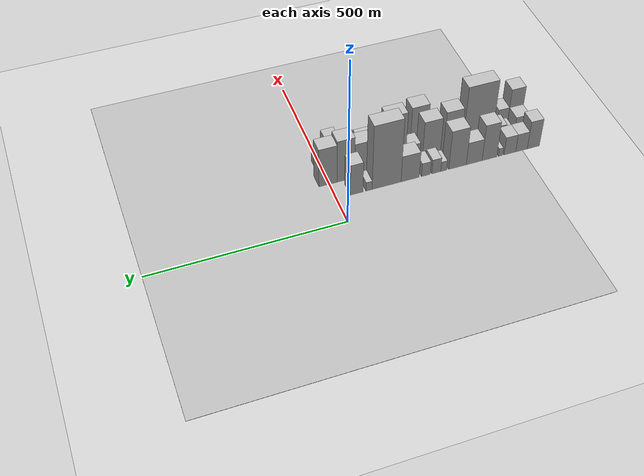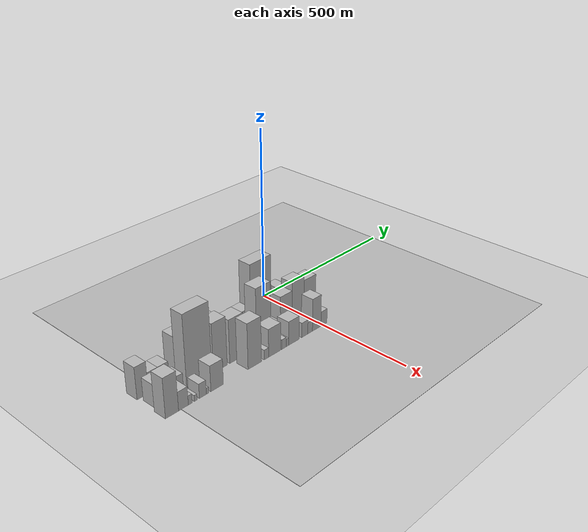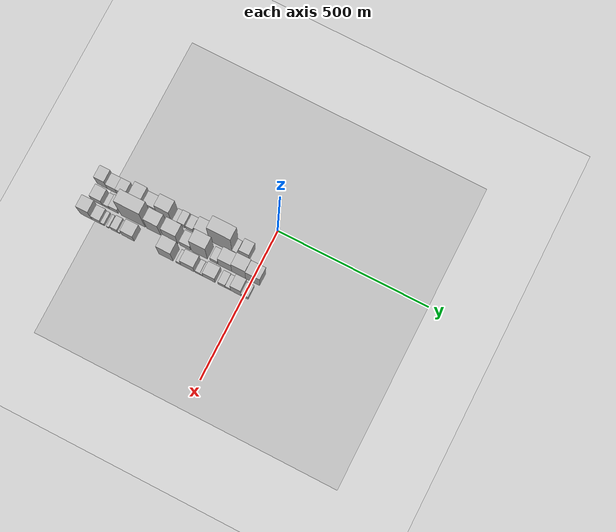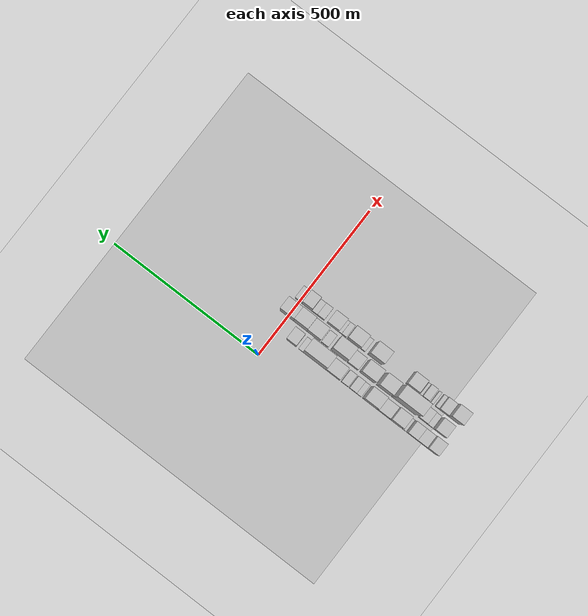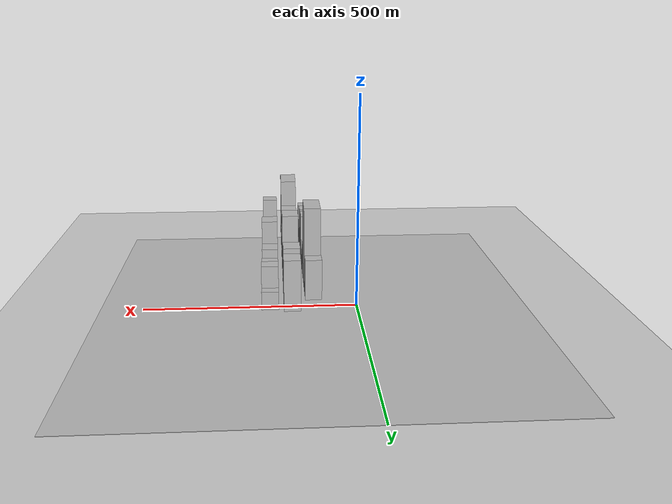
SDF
<sdf version="1.6">
 <world name="default">
  <include><name>ground_plane_1</name><uri>model://HANNAS_ground_plane</uri></include>
  <include>
   <name>ground_plane_2</name>
   <uri>model://HANNAS_ground_plane</uri>
   <pose>100 0 0  0 0 0</pose>
  </include>
  <model name="building_1">
   <static>1</static>
   <pose>100.0000 -530.8373 0 0.000000 0.000000 0.000000</pose>
   <link name="link">
    <pose>0 0 46.50 0 0 0</pose>
    <collision name="collision"><geometry><box><size>40.0000 34.3255 93.0000</size></box></geometry></collision>
    <visual name="visual">
     <cast_shadows>0</cast_shadows>
     <geometry><box><size>40.0000 34.3255 93.0000</size></box></geometry>
     <material>
      <script>
       <uri>model://HANNAS_wall/materials/scripts</uri>
       <uri>model://HANNAS_wall/materials/textures</uri>
       <name>vrc/HANNAS_wall</name>
      </script>
     </material>
    </visual>
   </link>
  </model>
  <model name="building_2">
   <static>1</static>
   <pose>100.0000 -497.5036 0 0.000000 0.000000 0.000000</pose>
   <link name="link">
    <pose>0 0 30.00 0 0 0</pose>
    <collision name="collision"><geometry><box><size>40.0000 32.3418 60.0000</size></box></geometry></collision>
    <visual name="visual">
     <cast_shadows>0</cast_shadows>
     <geometry><box><size>40.0000 32.3418 60.0000</size></box></geometry>
     <material>
      <script>
       <uri>model://HANNAS_wall/materials/scripts</uri>
       <uri>model://HANNAS_wall/materials/textures</uri>
       <name>vrc/HANNAS_wall</name>
      </script>
     </material>
    </visual>
   </link>
  </model>
  <model name="building_3">
   <static>1</static>
   <pose>100.0000 -465.0349 0 0.000000 0.000000 0.000000</pose>
   <link name="link">
    <pose>0 0 30.00 0 0 0</pose>
    <collision name="collision"><geometry><box><size>40.0000 32.5957 60.0000</size></box></geometry></collision>
    <visual name="visual">
     <cast_shadows>0</cast_shadows>
     <geometry><box><size>40.0000 32.5957 60.0000</size></box></geometry>
     <material>
      <script>
       <uri>model://HANNAS_wall/materials/scripts</uri>
       <uri>model://HANNAS_wall/materials/textures</uri>
       <name>vrc/HANNAS_wall</name>
      </script>
     </material>
    </visual>
   </link>
  </model>
  <model name="building_4">
   <static>1</static>
   <pose>100.0000 -439.0278 0 0.000000 0.000000 0.000000</pose>
   <link name="link">
    <pose>0 0 13.50 0 0 0</pose>
    <collision name="collision"><geometry><box><size>40.0000 11.4185 27.0000</size></box></geometry></collision>
    <visual name="visual">
     <cast_shadows>0</cast_shadows>
     <geometry><box><size>40.0000 11.4185 27.0000</size></box></geometry>
     <material>
      <script>
       <uri>model://HANNAS_wall/materials/scripts</uri>
       <uri>model://HANNAS_wall/materials/textures</uri>
       <name>vrc/HANNAS_wall</name>
      </script>
     </material>
    </visual>
   </link>
  </model>
  <model name="building_5">
   <static>1</static>
   <pose>100.0000 -407.9759 0 0.000000 0.000000 0.000000</pose>
   <link name="link">
    <pose>0 0 60.00 0 0 0</pose>
    <collision name="collision"><geometry><box><size>40.0000 40.6853 120.0000</size></box></geometry></collision>
    <visual name="visual">
     <cast_shadows>0</cast_shadows>
     <geometry><box><size>40.0000 40.6853 120.0000</size></box></geometry>
     <material>
      <script>
       <uri>model://HANNAS_wall/materials/scripts</uri>
       <uri>model://HANNAS_wall/materials/textures</uri>
       <name>vrc/HANNAS_wall</name>
      </script>
     </material>
    </visual>
   </link>
  </model>
  <model name="building_6">
   <static>1</static>
   <pose>100.0000 -366.1311 0 0.000000 0.000000 0.000000</pose>
   <link name="link">
    <pose>0 0 37.50 0 0 0</pose>
    <collision name="collision"><geometry><box><size>40.0000 43.0041 75.0000</size></box></geometry></collision>
    <visual name="visual">
     <cast_shadows>0</cast_shadows>
     <geometry><box><size>40.0000 43.0041 75.0000</size></box></geometry>
     <material>
      <script>
       <uri>model://HANNAS_wall/materials/scripts</uri>
       <uri>model://HANNAS_wall/materials/textures</uri>
       <name>vrc/HANNAS_wall</name>
      </script>
     </material>
    </visual>
   </link>
  </model>
  <model name="building_7">
   <static>1</static>
   <pose>100.0000 -320.7055 0 0.000000 0.000000 0.000000</pose>
   <link name="link">
    <pose>0 0 64.50 0 0 0</pose>
    <collision name="collision"><geometry><box><size>40.0000 47.8472 129.0000</size></box></geometry></collision>
    <visual name="visual">
     <cast_shadows>0</cast_shadows>
     <geometry><box><size>40.0000 47.8472 129.0000</size></box></geometry>
     <material>
      <script>
       <uri>model://HANNAS_wall/materials/scripts</uri>
       <uri>model://HANNAS_wall/materials/textures</uri>
       <name>vrc/HANNAS_wall</name>
      </script>
     </material>
    </visual>
   </link>
  </model>
  <model name="building_8">
   <static>1</static>
   <pose>100.0000 -283.4614 0 0.000000 0.000000 0.000000</pose>
   <link name="link">
    <pose>0 0 16.50 0 0 0</pose>
    <collision name="collision"><geometry><box><size>40.0000 16.6410 33.0000</size></box></geometry></collision>
    <visual name="visual">
     <cast_shadows>0</cast_shadows>
     <geometry><box><size>40.0000 16.6410 33.0000</size></box></geometry>
     <material>
      <script>
       <uri>model://HANNAS_wall/materials/scripts</uri>
       <uri>model://HANNAS_wall/materials/textures</uri>
       <name>vrc/HANNAS_wall</name>
      </script>
     </material>
    </visual>
   </link>
  </model>
  <model name="building_9">
   <static>1</static>
   <pose>100.0000 -263.0421 0 0.000000 0.000000 0.000000</pose>
   <link name="link">
    <pose>0 0 24.00 0 0 0</pose>
    <collision name="collision"><geometry><box><size>40.0000 24.1975 48.0000</size></box></geometry></collision>
    <visual name="visual">
     <cast_shadows>0</cast_shadows>
     <geometry><box><size>40.0000 24.1975 48.0000</size></box></geometry>
     <material>
      <script>
       <uri>model://HANNAS_wall/materials/scripts</uri>
       <uri>model://HANNAS_wall/materials/textures</uri>
       <name>vrc/HANNAS_wall</name>
      </script>
     </material>
    </visual>
   </link>
  </model>
  <model name="building_10">
   <static>1</static>
   <pose>100.0000 -235.0637 0 0.000000 0.000000 0.000000</pose>
   <link name="link">
    <pose>0 0 22.50 0 0 0</pose>
    <collision name="collision"><geometry><box><size>40.0000 23.7592 45.0000</size></box></geometry></collision>
    <visual name="visual">
     <cast_shadows>0</cast_shadows>
     <geometry><box><size>40.0000 23.7592 45.0000</size></box></geometry>
     <material>
      <script>
       <uri>model://HANNAS_wall/materials/scripts</uri>
       <uri>model://HANNAS_wall/materials/textures</uri>
       <name>vrc/HANNAS_wall</name>
      </script>
     </material>
    </visual>
   </link>
  </model>
  <model name="building_11">
   <static>1</static>
   <pose>100.0000 -192.9801 0 0.000000 0.000000 0.000000</pose>
   <link name="link">
    <pose>0 0 43.50 0 0 0</pose>
    <collision name="collision"><geometry><box><size>40.0000 48.4080 87.0000</size></box></geometry></collision>
    <visual name="visual">
     <cast_shadows>0</cast_shadows>
     <geometry><box><size>40.0000 48.4080 87.0000</size></box></geometry>
     <material>
      <script>
       <uri>model://HANNAS_wall/materials/scripts</uri>
       <uri>model://HANNAS_wall/materials/textures</uri>
       <name>vrc/HANNAS_wall</name>
      </script>
     </material>
    </visual>
   </link>
  </model>
  <model name="building_12">
   <static>1</static>
   <pose>100.0000 -130.5440 0 0.000000 0.000000 0.000000</pose>
   <link name="link">
    <pose>0 0 106.50 0 0 0</pose>
    <collision name="collision"><geometry><box><size>40.0000 76.4643 213.0000</size></box></geometry></collision>
    <visual name="visual">
     <cast_shadows>0</cast_shadows>
     <geometry><box><size>40.0000 76.4643 213.0000</size></box></geometry>
     <material>
      <script>
       <uri>model://HANNAS_wall/materials/scripts</uri>
       <uri>model://HANNAS_wall/materials/textures</uri>
       <name>vrc/HANNAS_wall</name>
      </script>
     </material>
    </visual>
   </link>
  </model>
  <model name="building_13">
   <static>1</static>
   <pose>100.0000 -84.3741 0 0.000000 0.000000 0.000000</pose>
   <link name="link">
    <pose>0 0 15.00 0 0 0</pose>
    <collision name="collision"><geometry><box><size>40.0000 15.8754 30.0000</size></box></geometry></collision>
    <visual name="visual">
     <cast_shadows>0</cast_shadows>
     <geometry><box><size>40.0000 15.8754 30.0000</size></box></geometry>
     <material>
      <script>
       <uri>model://HANNAS_wall/materials/scripts</uri>
       <uri>model://HANNAS_wall/materials/textures</uri>
       <name>vrc/HANNAS_wall</name>
      </script>
     </material>
    </visual>
   </link>
  </model>
  <model name="building_14">
   <static>1</static>
   <pose>100.0000 -51.7980 0 0.000000 0.000000 0.000000</pose>
   <link name="link">
    <pose>0 0 51.00 0 0 0</pose>
    <collision name="collision"><geometry><box><size>40.0000 33.2770 102.0000</size></box></geometry></collision>
    <visual name="visual">
     <cast_shadows>0</cast_shadows>
     <geometry><box><size>40.0000 33.2770 102.0000</size></box></geometry>
     <material>
      <script>
       <uri>model://HANNAS_wall/materials/scripts</uri>
       <uri>model://HANNAS_wall/materials/textures</uri>
       <name>vrc/HANNAS_wall</name>
      </script>
     </material>
    </visual>
   </link>
  </model>
  <model name="building_29">
   <static>1</static>
   <pose>152.0000 -520.1196 0 0.000000 0.000000 0.000000</pose>
   <link name="link">
    <pose>0 0 33.00 0 0 0</pose>
    <collision name="collision"><geometry><box><size>40.0000 37.7607 66.0000</size></box></geometry></collision>
    <visual name="visual">
     <cast_shadows>0</cast_shadows>
     <geometry><box><size>40.0000 37.7607 66.0000</size></box></geometry>
     <material>
      <script>
       <uri>model://HANNAS_wall/materials/scripts</uri>
       <uri>model://HANNAS_wall/materials/textures</uri>
       <name>vrc/HANNAS_wall</name>
      </script>
     </material>
    </visual>
   </link>
  </model>
  <model name="building_30">
   <static>1</static>
   <pose>152.0000 -486.7335 0 0.000000 0.000000 0.000000</pose>
   <link name="link">
    <pose>0 0 16.50 0 0 0</pose>
    <collision name="collision"><geometry><box><size>40.0000 19.0117 33.0000</size></box></geometry></collision>
    <visual name="visual">
     <cast_shadows>0</cast_shadows>
     <geometry><box><size>40.0000 19.0117 33.0000</size></box></geometry>
     <material>
      <script>
       <uri>model://HANNAS_wall/materials/scripts</uri>
       <uri>model://HANNAS_wall/materials/textures</uri>
       <name>vrc/HANNAS_wall</name>
      </script>
     </material>
    </visual>
   </link>
  </model>
  <model name="building_31">
   <static>1</static>
   <pose>152.0000 -462.7647 0 0.000000 0.000000 0.000000</pose>
   <link name="link">
    <pose>0 0 25.50 0 0 0</pose>
    <collision name="collision"><geometry><box><size>40.0000 28.9259 51.0000</size></box></geometry></collision>
    <visual name="visual">
     <cast_shadows>0</cast_shadows>
     <geometry><box><size>40.0000 28.9259 51.0000</size></box></geometry>
     <material>
      <script>
       <uri>model://HANNAS_wall/materials/scripts</uri>
       <uri>model://HANNAS_wall/materials/textures</uri>
       <name>vrc/HANNAS_wall</name>
      </script>
     </material>
    </visual>
   </link>
  </model>
  <model name="building_32">
   <static>1</static>
   <pose>152.0000 -397.3396 0 0.000000 0.000000 0.000000</pose>
   <link name="link">
    <pose>0 0 105.00 0 0 0</pose>
    <collision name="collision"><geometry><box><size>40.0000 81.9243 210.0000</size></box></geometry></collision>
    <visual name="visual">
     <cast_shadows>0</cast_shadows>
     <geometry><box><size>40.0000 81.9243 210.0000</size></box></geometry>
     <material>
      <script>
       <uri>model://HANNAS_wall/materials/scripts</uri>
       <uri>model://HANNAS_wall/materials/textures</uri>
       <name>vrc/HANNAS_wall</name>
      </script>
     </material>
    </visual>
   </link>
  </model>
  <model name="building_33">
   <static>1</static>
   <pose>152.0000 -327.9991 0 0.000000 0.000000 0.000000</pose>
   <link name="link">
    <pose>0 0 72.00 0 0 0</pose>
    <collision name="collision"><geometry><box><size>40.0000 46.7567 144.0000</size></box></geometry></collision>
    <visual name="visual">
     <cast_shadows>0</cast_shadows>
     <geometry><box><size>40.0000 46.7567 144.0000</size></box></geometry>
     <material>
      <script>
       <uri>model://HANNAS_wall/materials/scripts</uri>
       <uri>model://HANNAS_wall/materials/textures</uri>
       <name>vrc/HANNAS_wall</name>
      </script>
     </material>
    </visual>
   </link>
  </model>
  <model name="building_34">
   <static>1</static>
   <pose>152.0000 -271.2274 0 0.000000 0.000000 0.000000</pose>
   <link name="link">
    <pose>0 0 64.50 0 0 0</pose>
    <collision name="collision"><geometry><box><size>40.0000 48.7866 129.0000</size></box></geometry></collision>
    <visual name="visual">
     <cast_shadows>0</cast_shadows>
     <geometry><box><size>40.0000 48.7866 129.0000</size></box></geometry>
     <material>
      <script>
       <uri>model://HANNAS_wall/materials/scripts</uri>
       <uri>model://HANNAS_wall/materials/textures</uri>
       <name>vrc/HANNAS_wall</name>
      </script>
     </material>
    </visual>
   </link>
  </model>
  <model name="building_35">
   <static>1</static>
   <pose>152.0000 -221.7315 0 0.000000 0.000000 0.000000</pose>
   <link name="link">
    <pose>0 0 31.50 0 0 0</pose>
    <collision name="collision"><geometry><box><size>40.0000 36.2051 63.0000</size></box></geometry></collision>
    <visual name="visual">
     <cast_shadows>0</cast_shadows>
     <geometry><box><size>40.0000 36.2051 63.0000</size></box></geometry>
     <material>
      <script>
       <uri>model://HANNAS_wall/materials/scripts</uri>
       <uri>model://HANNAS_wall/materials/textures</uri>
       <name>vrc/HANNAS_wall</name>
      </script>
     </material>
    </visual>
   </link>
  </model>
  <model name="building_36">
   <static>1</static>
   <pose>152.0000 -174.0353 0 0.000000 0.000000 0.000000</pose>
   <link name="link">
    <pose>0 0 88.50 0 0 0</pose>
    <collision name="collision"><geometry><box><size>40.0000 53.1873 177.0000</size></box></geometry></collision>
    <visual name="visual">
     <cast_shadows>0</cast_shadows>
     <geometry><box><size>40.0000 53.1873 177.0000</size></box></geometry>
     <material>
      <script>
       <uri>model://HANNAS_wall/materials/scripts</uri>
       <uri>model://HANNAS_wall/materials/textures</uri>
       <name>vrc/HANNAS_wall</name>
      </script>
     </material>
    </visual>
   </link>
  </model>
  <model name="building_37">
   <static>1</static>
   <pose>152.0000 -126.2122 0 0.000000 0.000000 0.000000</pose>
   <link name="link">
    <pose>0 0 22.50 0 0 0</pose>
    <collision name="collision"><geometry><box><size>40.0000 24.4589 45.0000</size></box></geometry></collision>
    <visual name="visual">
     <cast_shadows>0</cast_shadows>
     <geometry><box><size>40.0000 24.4589 45.0000</size></box></geometry>
     <material>
      <script>
       <uri>model://HANNAS_wall/materials/scripts</uri>
       <uri>model://HANNAS_wall/materials/textures</uri>
       <name>vrc/HANNAS_wall</name>
      </script>
     </material>
    </visual>
   </link>
  </model>
  <model name="building_38">
   <static>1</static>
   <pose>152.0000 -88.5632 0 0.000000 0.000000 0.000000</pose>
   <link name="link">
    <pose>0 0 57.00 0 0 0</pose>
    <collision name="collision"><geometry><box><size>40.0000 44.8390 114.0000</size></box></geometry></collision>
    <visual name="visual">
     <cast_shadows>0</cast_shadows>
     <geometry><box><size>40.0000 44.8390 114.0000</size></box></geometry>
     <material>
      <script>
       <uri>model://HANNAS_wall/materials/scripts</uri>
       <uri>model://HANNAS_wall/materials/textures</uri>
       <name>vrc/HANNAS_wall</name>
      </script>
     </material>
    </visual>
   </link>
  </model>
  <model name="building_39">
   <static>1</static>
   <pose>152.0000 -43.1254 0 0.000000 0.000000 0.000000</pose>
   <link name="link">
    <pose>0 0 69.00 0 0 0</pose>
    <collision name="collision"><geometry><box><size>40.0000 46.0368 138.0000</size></box></geometry></collision>
    <visual name="visual">
     <cast_shadows>0</cast_shadows>
     <geometry><box><size>40.0000 46.0368 138.0000</size></box></geometry>
     <material>
      <script>
       <uri>model://HANNAS_wall/materials/scripts</uri>
       <uri>model://HANNAS_wall/materials/textures</uri>
       <name>vrc/HANNAS_wall</name>
      </script>
     </material>
    </visual>
   </link>
  </model>
  <model name="building_40">
   <static>1</static>
   <pose>152.0000 3.5259 0 0.000000 0.000000 0.000000</pose>
   <link name="link">
    <pose>0 0 63.00 0 0 0</pose>
    <collision name="collision"><geometry><box><size>40.0000 47.2658 126.0000</size></box></geometry></collision>
    <visual name="visual">
     <cast_shadows>0</cast_shadows>
     <geometry><box><size>40.0000 47.2658 126.0000</size></box></geometry>
     <material>
      <script>
       <uri>model://HANNAS_wall/materials/scripts</uri>
       <uri>model://HANNAS_wall/materials/textures</uri>
       <name>vrc/HANNAS_wall</name>
      </script>
     </material>
    </visual>
   </link>
  </model>
  <model name="building_56">
   <static>1</static>
   <pose>204.0000 -528.2096 0 0.000000 0.000000 0.000000</pose>
   <link name="link">
    <pose>0 0 57.00 0 0 0</pose>
    <collision name="collision"><geometry><box><size>40.0000 39.5807 114.0000</size></box></geometry></collision>
    <visual name="visual">
     <cast_shadows>0</cast_shadows>
     <geometry><box><size>40.0000 39.5807 114.0000</size></box></geometry>
     <material>
      <script>
       <uri>model://HANNAS_wall/materials/scripts</uri>
       <uri>model://HANNAS_wall/materials/textures</uri>
       <name>vrc/HANNAS_wall</name>
      </script>
     </material>
    </visual>
   </link>
  </model>
  <model name="building_57">
   <static>1</static>
   <pose>204.0000 -493.4570 0 0.000000 0.000000 0.000000</pose>
   <link name="link">
    <pose>0 0 27.00 0 0 0</pose>
    <collision name="collision"><geometry><box><size>40.0000 29.9245 54.0000</size></box></geometry></collision>
    <visual name="visual">
     <cast_shadows>0</cast_shadows>
     <geometry><box><size>40.0000 29.9245 54.0000</size></box></geometry>
     <material>
      <script>
       <uri>model://HANNAS_wall/materials/scripts</uri>
       <uri>model://HANNAS_wall/materials/textures</uri>
       <name>vrc/HANNAS_wall</name>
      </script>
     </material>
    </visual>
   </link>
  </model>
  <model name="building_58">
   <static>1</static>
   <pose>204.0000 -472.6274 0 0.000000 0.000000 0.000000</pose>
   <link name="link">
    <pose>0 0 13.50 0 0 0</pose>
    <collision name="collision"><geometry><box><size>40.0000 11.7347 27.0000</size></box></geometry></collision>
    <visual name="visual">
     <cast_shadows>0</cast_shadows>
     <geometry><box><size>40.0000 11.7347 27.0000</size></box></geometry>
     <material>
      <script>
       <uri>model://HANNAS_wall/materials/scripts</uri>
       <uri>model://HANNAS_wall/materials/textures</uri>
       <name>vrc/HANNAS_wall</name>
      </script>
     </material>
    </visual>
   </link>
  </model>
  <model name="building_59">
   <static>1</static>
   <pose>204.0000 -455.3927 0 0.000000 0.000000 0.000000</pose>
   <link name="link">
    <pose>0 0 9.00 0 0 0</pose>
    <collision name="collision"><geometry><box><size>40.0000 8.7347 18.0000</size></box></geometry></collision>
    <visual name="visual">
     <cast_shadows>0</cast_shadows>
     <geometry><box><size>40.0000 8.7347 18.0000</size></box></geometry>
     <material>
      <script>
       <uri>model://HANNAS_wall/materials/scripts</uri>
       <uri>model://HANNAS_wall/materials/textures</uri>
       <name>vrc/HANNAS_wall</name>
      </script>
     </material>
    </visual>
   </link>
  </model>
  <model name="building_60">
   <static>1</static>
   <pose>204.0000 -432.9107 0 0.000000 0.000000 0.000000</pose>
   <link name="link">
    <pose>0 0 21.00 0 0 0</pose>
    <collision name="collision"><geometry><box><size>40.0000 22.2294 42.0000</size></box></geometry></collision>
    <visual name="visual">
     <cast_shadows>0</cast_shadows>
     <geometry><box><size>40.0000 22.2294 42.0000</size></box></geometry>
     <material>
      <script>
       <uri>model://HANNAS_wall/materials/scripts</uri>
       <uri>model://HANNAS_wall/materials/textures</uri>
       <name>vrc/HANNAS_wall</name>
      </script>
     </material>
    </visual>
   </link>
  </model>
  <model name="building_61">
   <static>1</static>
   <pose>204.0000 -417.9577 0 0.000000 0.000000 0.000000</pose>
   <link name="link">
    <pose>0 0 9.00 0 0 0</pose>
    <collision name="collision"><geometry><box><size>40.0000 7.6766 18.0000</size></box></geometry></collision>
    <visual name="visual">
     <cast_shadows>0</cast_shadows>
     <geometry><box><size>40.0000 7.6766 18.0000</size></box></geometry>
     <material>
      <script>
       <uri>model://HANNAS_wall/materials/scripts</uri>
       <uri>model://HANNAS_wall/materials/textures</uri>
       <name>vrc/HANNAS_wall</name>
      </script>
     </material>
    </visual>
   </link>
  </model>
  <model name="building_62">
   <static>1</static>
   <pose>204.0000 -386.5967 0 0.000000 0.000000 0.000000</pose>
   <link name="link">
    <pose>0 0 37.50 0 0 0</pose>
    <collision name="collision"><geometry><box><size>40.0000 41.0453 75.0000</size></box></geometry></collision>
    <visual name="visual">
     <cast_shadows>0</cast_shadows>
     <geometry><box><size>40.0000 41.0453 75.0000</size></box></geometry>
     <material>
      <script>
       <uri>model://HANNAS_wall/materials/scripts</uri>
       <uri>model://HANNAS_wall/materials/textures</uri>
       <name>vrc/HANNAS_wall</name>
      </script>
     </material>
    </visual>
   </link>
  </model>
  <model name="building_63">
   <static>1</static>
   <pose>204.0000 -258.8673 0 0.000000 0.000000 0.000000</pose>
   <link name="link">
    <pose>0 0 67.50 0 0 0</pose>
    <collision name="collision"><geometry><box><size>40.0000 47.4712 135.0000</size></box></geometry></collision>
    <visual name="visual">
     <cast_shadows>0</cast_shadows>
     <geometry><box><size>40.0000 47.4712 135.0000</size></box></geometry>
     <material>
      <script>
       <uri>model://HANNAS_wall/materials/scripts</uri>
       <uri>model://HANNAS_wall/materials/textures</uri>
       <name>vrc/HANNAS_wall</name>
      </script>
     </material>
    </visual>
   </link>
  </model>
  <model name="building_64">
   <static>1</static>
   <pose>204.0000 -217.2198 0 0.000000 0.000000 0.000000</pose>
   <link name="link">
    <pose>0 0 15.00 0 0 0</pose>
    <collision name="collision"><geometry><box><size>40.0000 15.8237 30.0000</size></box></geometry></collision>
    <visual name="visual">
     <cast_shadows>0</cast_shadows>
     <geometry><box><size>40.0000 15.8237 30.0000</size></box></geometry>
     <material>
      <script>
       <uri>model://HANNAS_wall/materials/scripts</uri>
       <uri>model://HANNAS_wall/materials/textures</uri>
       <name>vrc/HANNAS_wall</name>
      </script>
     </material>
    </visual>
   </link>
  </model>
  <model name="building_65">
   <static>1</static>
   <pose>204.0000 -186.7646 0 0.000000 0.000000 0.000000</pose>
   <link name="link">
    <pose>0 0 42.00 0 0 0</pose>
    <collision name="collision"><geometry><box><size>40.0000 45.0867 84.0000</size></box></geometry></collision>
    <visual name="visual">
     <cast_shadows>0</cast_shadows>
     <geometry><box><size>40.0000 45.0867 84.0000</size></box></geometry>
     <material>
      <script>
       <uri>model://HANNAS_wall/materials/scripts</uri>
       <uri>model://HANNAS_wall/materials/textures</uri>
       <name>vrc/HANNAS_wall</name>
      </script>
     </material>
    </visual>
   </link>
  </model>
  <model name="building_66">
   <static>1</static>
   <pose>204.0000 -153.0444 0 0.000000 0.000000 0.000000</pose>
   <link name="link">
    <pose>0 0 15.00 0 0 0</pose>
    <collision name="collision"><geometry><box><size>40.0000 16.3539 30.0000</size></box></geometry></collision>
    <visual name="visual">
     <cast_shadows>0</cast_shadows>
     <geometry><box><size>40.0000 16.3539 30.0000</size></box></geometry>
     <material>
      <script>
       <uri>model://HANNAS_wall/materials/scripts</uri>
       <uri>model://HANNAS_wall/materials/textures</uri>
       <name>vrc/HANNAS_wall</name>
      </script>
     </material>
    </visual>
   </link>
  </model>
  <model name="building_67">
   <static>1</static>
   <pose>204.0000 -139.9452 0 0.000000 0.000000 0.000000</pose>
   <link name="link">
    <pose>0 0 12.00 0 0 0</pose>
    <collision name="collision"><geometry><box><size>40.0000 9.8444 24.0000</size></box></geometry></collision>
    <visual name="visual">
     <cast_shadows>0</cast_shadows>
     <geometry><box><size>40.0000 9.8444 24.0000</size></box></geometry>
     <material>
      <script>
       <uri>model://HANNAS_wall/materials/scripts</uri>
       <uri>model://HANNAS_wall/materials/textures</uri>
       <name>vrc/HANNAS_wall</name>
      </script>
     </material>
    </visual>
   </link>
  </model>
  <model name="building_68">
   <static>1</static>
   <pose>204.0000 -114.8810 0 0.000000 0.000000 0.000000</pose>
   <link name="link">
    <pose>0 0 36.00 0 0 0</pose>
    <collision name="collision"><geometry><box><size>40.0000 40.2841 72.0000</size></box></geometry></collision>
    <visual name="visual">
     <cast_shadows>0</cast_shadows>
     <geometry><box><size>40.0000 40.2841 72.0000</size></box></geometry>
     <material>
      <script>
       <uri>model://HANNAS_wall/materials/scripts</uri>
       <uri>model://HANNAS_wall/materials/textures</uri>
       <name>vrc/HANNAS_wall</name>
      </script>
     </material>
    </visual>
   </link>
  </model>
  <model name="building_69">
   <static>1</static>
   <pose>204.0000 -72.8657 0 0.000000 0.000000 0.000000</pose>
   <link name="link">
    <pose>0 0 22.50 0 0 0</pose>
    <collision name="collision"><geometry><box><size>40.0000 23.7465 45.0000</size></box></geometry></collision>
    <visual name="visual">
     <cast_shadows>0</cast_shadows>
     <geometry><box><size>40.0000 23.7465 45.0000</size></box></geometry>
     <material>
      <script>
       <uri>model://HANNAS_wall/materials/scripts</uri>
       <uri>model://HANNAS_wall/materials/textures</uri>
       <name>vrc/HANNAS_wall</name>
      </script>
     </material>
    </visual>
   </link>
  </model>
  <model name="building_70">
   <static>1</static>
   <pose>204.0000 -51.9399 0 0.000000 0.000000 0.000000</pose>
   <link name="link">
    <pose>0 0 18.00 0 0 0</pose>
    <collision name="collision"><geometry><box><size>40.0000 18.1051 36.0000</size></box></geometry></collision>
    <visual name="visual">
     <cast_shadows>0</cast_shadows>
     <geometry><box><size>40.0000 18.1051 36.0000</size></box></geometry>
     <material>
      <script>
       <uri>model://HANNAS_wall/materials/scripts</uri>
       <uri>model://HANNAS_wall/materials/textures</uri>
       <name>vrc/HANNAS_wall</name>
      </script>
     </material>
    </visual>
   </link>
  </model>
  <model name="building_71">
   <static>1</static>
   <pose>204.0000 -25.9015 0 0.000000 0.000000 0.000000</pose>
   <link name="link">
    <pose>0 0 49.50 0 0 0</pose>
    <collision name="collision"><geometry><box><size>40.0000 33.9719 99.0000</size></box></geometry></collision>
    <visual name="visual">
     <cast_shadows>0</cast_shadows>
     <geometry><box><size>40.0000 33.9719 99.0000</size></box></geometry>
     <material>
      <script>
       <uri>model://HANNAS_wall/materials/scripts</uri>
       <uri>model://HANNAS_wall/materials/textures</uri>
       <name>vrc/HANNAS_wall</name>
      </script>
     </material>
    </visual>
   </link>
  </model>
  <model name="building_72">
   <static>1</static>
   <pose>204.0000 3.3660 0 0.000000 0.000000 0.000000</pose>
   <link name="link">
    <pose>0 0 22.50 0 0 0</pose>
    <collision name="collision"><geometry><box><size>40.0000 24.5631 45.0000</size></box></geometry></collision>
    <visual name="visual">
     <cast_shadows>0</cast_shadows>
     <geometry><box><size>40.0000 24.5631 45.0000</size></box></geometry>
     <material>
      <script>
       <uri>model://HANNAS_wall/materials/scripts</uri>
       <uri>model://HANNAS_wall/materials/textures</uri>
       <name>vrc/HANNAS_wall</name>
      </script>
     </material>
    </visual>
   </link>
  </model>
 </world>
</sdf>
